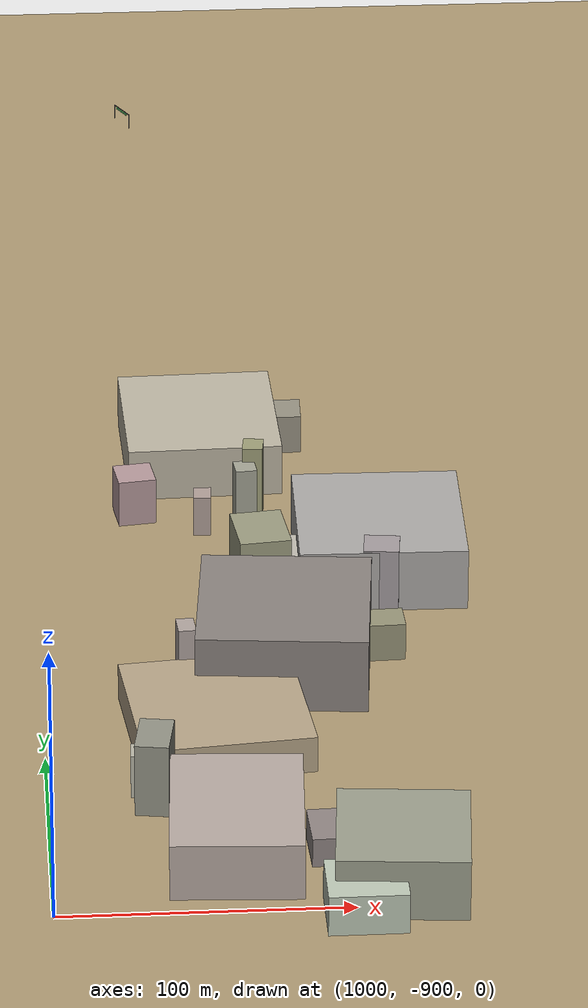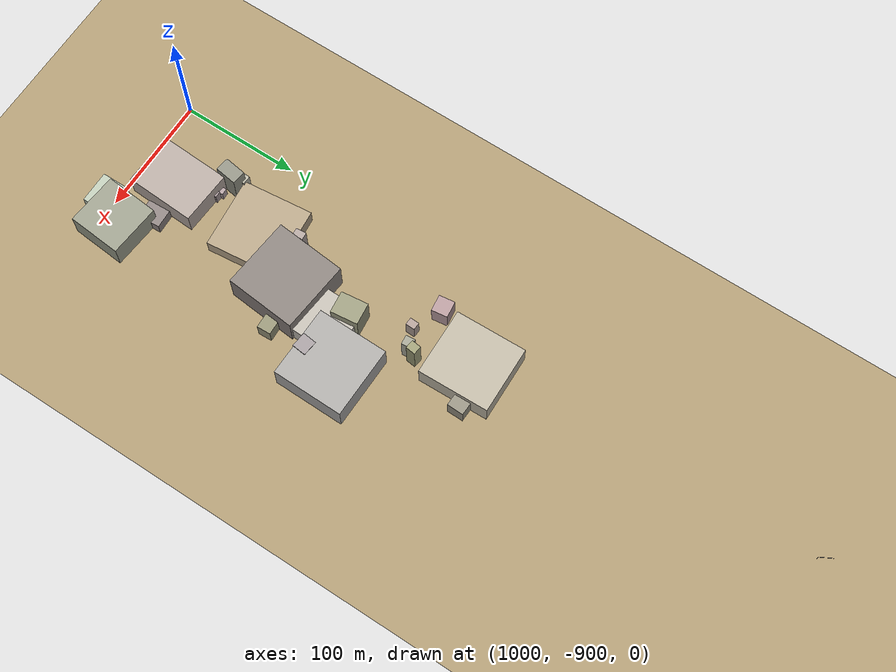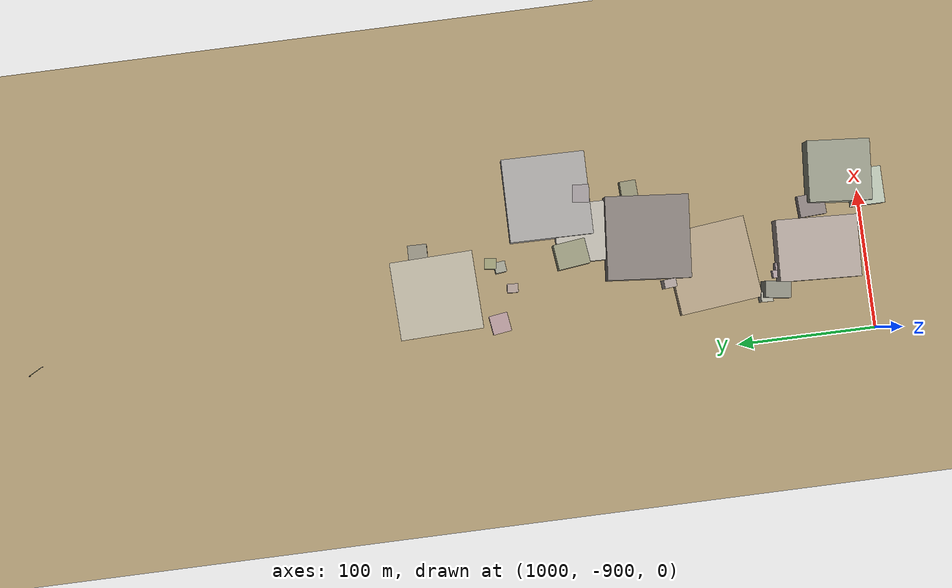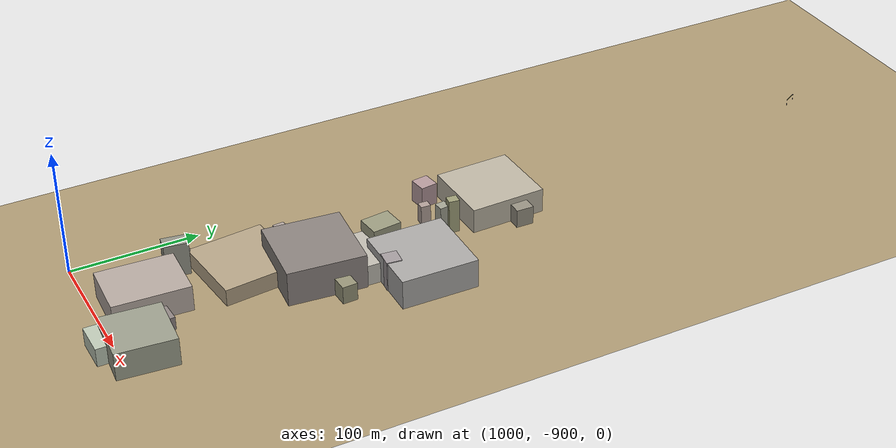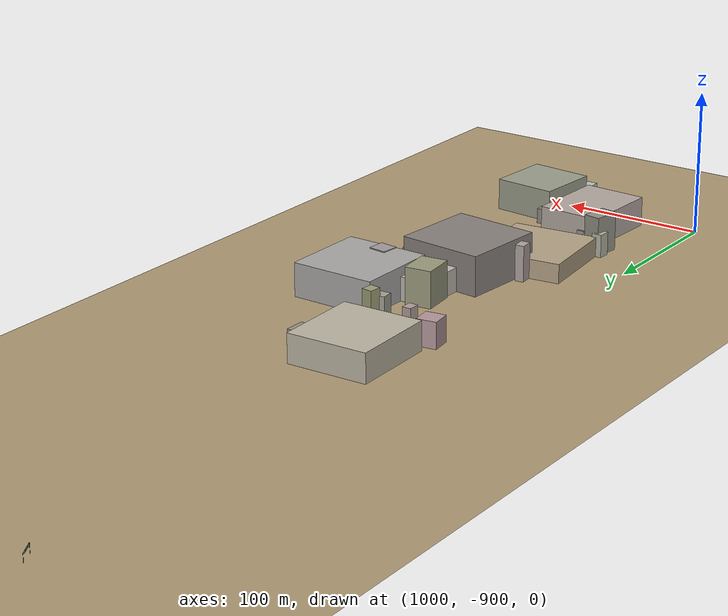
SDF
<sdf version="1.9">
 <world name="crossroad_world">
  <model name="ground_plane">
   <static>true</static>
   <pose>0 0 -0.05 0 0 0</pose>
   <link name="link">
    <collision name="collision">
     <geometry><plane><normal>0 0 1</normal><size>10000 10000</size></plane></geometry>
    </collision>
    <visual name="visual">
     <geometry><plane><normal>0 0 1</normal><size>15000 15000</size></plane></geometry>
     <material><ambient>0.68 0.60 0.45 1</ambient><diffuse>0.68 0.60 0.45 1</diffuse></material>
    </visual>
   </link>
  </model>
  <model name="gantry_138">
   <static>true</static>
   <pose>1045.897 -291.827 0 0 0 -1.072</pose>
   <link name="link">
    <visual name="post_l">
     <pose>-5.700 0 2.925 0 0 0</pose>
     <geometry><cylinder><radius>0.1</radius><length>5.85</length></cylinder></geometry>
     <material><ambient>0.30 0.30 0.35 1</ambient><diffuse>0.30 0.30 0.35 1</diffuse></material>
    </visual>
    <visual name="post_r">
     <pose>5.700 0 2.925 0 0 0</pose>
     <geometry><cylinder><radius>0.1</radius><length>5.85</length></cylinder></geometry>
     <material><ambient>0.30 0.30 0.35 1</ambient><diffuse>0.30 0.30 0.35 1</diffuse></material>
    </visual>
    <visual name="beam">
     <pose>0 0 6.000 0 0 0</pose>
     <geometry><box><size>11.400 0.22 0.22</size></box></geometry>
     <material><ambient>0.30 0.30 0.35 1</ambient><diffuse>0.30 0.30 0.35 1</diffuse></material>
    </visual>
    <visual name="sign_border">
     <pose>0 -0.14 5.450 0 0 0</pose>
     <geometry><box><size>8.288 0.04 0.92</size></box></geometry>
     <material><ambient>0.90 0.85 0.10 1</ambient><diffuse>0.90 0.85 0.10 1</diffuse></material>
    </visual>
    <visual name="sign_panel">
     <pose>0 -0.15 5.450 0 0 0</pose>
     <geometry><box><size>8.208 0.05 0.86</size></box></geometry>
     <material><ambient>0.05 0.38 0.10 1</ambient><diffuse>0.05 0.38 0.10 1</diffuse></material>
    </visual>
    <collision name="col_post_l">
     <pose>-5.700 0 2.925 0 0 0</pose>
     <geometry><cylinder><radius>0.1</radius><length>5.85</length></cylinder></geometry>
    </collision>
    <collision name="col_post_r">
     <pose>5.700 0 2.925 0 0 0</pose>
     <geometry><cylinder><radius>0.1</radius><length>5.85</length></cylinder></geometry>
    </collision>
    <collision name="col_beam">
     <pose>0 0 6.000 0 0 0</pose>
     <geometry><box><size>11.400 0.22 0.22</size></box></geometry>
    </collision>
   </link>
  </model>
  <model name="building_255">
   <static>true</static>
   <pose>1122.671 -698.894 12.004 0 0 -0.109</pose>
   <link name="link">
    <visual name="body">
     <geometry><box><size>12.70 11.87 24.01</size></box></geometry>
     <material><ambient>0.64 0.61 0.62 1</ambient><diffuse>0.64 0.61 0.62 1</diffuse></material>
    </visual>
    <collision name="col"><geometry><box><size>12.70 11.87 24.01</size></box></geometry></collision>
   </link>
  </model>
  <model name="building_257">
   <static>true</static>
   <pose>1059.363 -787.165 6.756 0 0 0.105</pose>
   <link name="link">
    <visual name="body">
     <geometry><box><size>60.00 59.66 13.51</size></box></geometry>
     <material><ambient>0.71 0.64 0.53 1</ambient><diffuse>0.71 0.64 0.53 1</diffuse></material>
    </visual>
    <collision name="col"><geometry><box><size>60.00 59.66 13.51</size></box></geometry></collision>
   </link>
  </model>
  <model name="building_275">
   <static>true</static>
   <pose>1031.858 -822.840 8.075 0 0 -0.038</pose>
   <link name="link">
    <visual name="body">
     <geometry><box><size>7.08 8.50 16.15</size></box></geometry>
     <material><ambient>0.72 0.71 0.65 1</ambient><diffuse>0.72 0.71 0.65 1</diffuse></material>
    </visual>
    <collision name="col"><geometry><box><size>7.08 8.50 16.15</size></box></geometry></collision>
   </link>
  </model>
  <model name="building_276">
   <static>true</static>
   <pose>1093.732 -864.529 5.323 0 0 0.045</pose>
   <link name="link">
    <visual name="body">
     <geometry><box><size>15.50 19.08 10.65</size></box></geometry>
     <material><ambient>0.56 0.52 0.51 1</ambient><diffuse>0.56 0.52 0.51 1</diffuse></material>
    </visual>
    <collision name="col"><geometry><box><size>15.50 19.08 10.65</size></box></geometry></collision>
   </link>
  </model>
  <model name="building_287">
   <static>true</static>
   <pose>1037.386 -629.822 8.929 0 0 0.136</pose>
   <link name="link">
    <visual name="body">
     <geometry><box><size>13.79 13.46 17.86</size></box></geometry>
     <material><ambient>0.71 0.60 0.61 1</ambient><diffuse>0.71 0.60 0.61 1</diffuse></material>
    </visual>
    <collision name="col"><geometry><box><size>13.79 13.46 17.86</size></box></geometry></collision>
   </link>
  </model>
  <model name="building_302">
   <static>true</static>
   <pose>1121.044 -734.271 7.065 0 0 0.041</pose>
   <link name="link">
    <visual name="body">
     <geometry><box><size>13.70 11.66 14.13</size></box></geometry>
     <material><ambient>0.59 0.58 0.47 1</ambient><diffuse>0.59 0.58 0.47 1</diffuse></material>
    </visual>
    <collision name="col"><geometry><box><size>13.70 11.66 14.13</size></box></geometry></collision>
   </link>
  </model>
  <model name="building_304">
   <static>true</static>
   <pose>1080.255 -686.864 12.704 0 0 0.116</pose>
   <link name="link">
    <visual name="body">
     <geometry><box><size>18.46 23.03 25.41</size></box></geometry>
     <material><ambient>0.61 0.61 0.50 1</ambient><diffuse>0.61 0.61 0.50 1</diffuse></material>
    </visual>
    <collision name="col"><geometry><box><size>18.46 23.03 25.41</size></box></geometry></collision>
   </link>
  </model>
  <model name="building_305">
   <static>true</static>
   <pose>1050.378 -754.218 12.454 0 0 0.077</pose>
   <link name="link">
    <visual name="body">
     <geometry><box><size>6.23 8.77 24.91</size></box></geometry>
     <material><ambient>0.69 0.64 0.62 1</ambient><diffuse>0.69 0.64 0.62 1</diffuse></material>
    </visual>
    <collision name="col"><geometry><box><size>6.23 8.77 24.91</size></box></geometry></collision>
   </link>
  </model>
  <model name="building_306">
   <static>true</static>
   <pose>1052.724 -834.557 5.217 0 0 -0.029</pose>
   <link name="link">
    <visual name="body">
     <geometry><box><size>5.22 4.40 10.43</size></box></geometry>
     <material><ambient>0.64 0.58 0.59 1</ambient><diffuse>0.64 0.58 0.59 1</diffuse></material>
    </visual>
    <collision name="col"><geometry><box><size>5.22 4.40 10.43</size></box></geometry></collision>
   </link>
  </model>
  <model name="building_307">
   <static>true</static>
   <pose>1047.478 -832.815 4.302 0 0 0.040</pose>
   <link name="link">
    <visual name="body">
     <geometry><box><size>5.55 5.20 8.60</size></box></geometry>
     <material><ambient>0.70 0.63 0.64 1</ambient><diffuse>0.70 0.63 0.64 1</diffuse></material>
    </visual>
    <collision name="col"><geometry><box><size>5.55 5.20 8.60</size></box></geometry></collision>
   </link>
  </model>
  <model name="building_308">
   <static>true</static>
   <pose>1036.142 -830.031 13.493 0 0 -0.148</pose>
   <link name="link">
    <visual name="body">
     <geometry><box><size>11.70 18.51 26.99</size></box></geometry>
     <material><ambient>0.57 0.57 0.52 1</ambient><diffuse>0.57 0.57 0.52 1</diffuse></material>
    </visual>
    <collision name="col"><geometry><box><size>11.70 18.51 26.99</size></box></geometry></collision>
   </link>
  </model>
  <model name="building_325">
   <static>true</static>
   <pose>1063.209 -586.887 9.924 0 0 0.029</pose>
   <link name="link">
    <visual name="body">
     <geometry><box><size>56.51 60.00 19.85</size></box></geometry>
     <material><ambient>0.74 0.71 0.64 1</ambient><diffuse>0.74 0.71 0.64 1</diffuse></material>
    </visual>
    <collision name="col"><geometry><box><size>56.51 60.00 19.85</size></box></geometry></collision>
   </link>
  </model>
  <model name="building_326">
   <static>true</static>
   <pose>1080.897 -628.025 13.742 0 0 -0.118</pose>
   <link name="link">
    <visual name="body">
     <geometry><box><size>7.44 8.22 27.48</size></box></geometry>
     <material><ambient>0.62 0.62 0.47 1</ambient><diffuse>0.62 0.62 0.47 1</diffuse></material>
    </visual>
    <collision name="col"><geometry><box><size>7.44 8.22 27.48</size></box></geometry></collision>
   </link>
  </model>
  <model name="building_327">
   <static>true</static>
   <pose>1077.592 -634.876 11.057 0 0 0.103</pose>
   <link name="link">
    <visual name="body">
     <geometry><box><size>7.81 8.05 22.11</size></box></geometry>
     <material><ambient>0.64 0.64 0.58 1</ambient><diffuse>0.64 0.64 0.58 1</diffuse></material>
    </visual>
    <collision name="col"><geometry><box><size>7.81 8.05 22.11</size></box></geometry></collision>
   </link>
  </model>
  <model name="building_328">
   <static>true</static>
   <pose>1061.529 -642.021 7.749 0 0 -0.047</pose>
   <link name="link">
    <visual name="body">
     <geometry><box><size>6.35 7.80 15.50</size></box></geometry>
     <material><ambient>0.69 0.62 0.59 1</ambient><diffuse>0.69 0.62 0.59 1</diffuse></material>
    </visual>
    <collision name="col"><geometry><box><size>6.35 7.80 15.50</size></box></geometry></collision>
   </link>
  </model>
  <model name="building_332">
   <static>true</static>
   <pose>1096.126 -577.196 7.460 0 0 -0.023</pose>
   <link name="link">
    <visual name="body">
     <geometry><box><size>10.57 13.89 14.92</size></box></geometry>
     <material><ambient>0.59 0.57 0.51 1</ambient><diffuse>0.59 0.57 0.51 1</diffuse></material>
    </visual>
    <collision name="col"><geometry><box><size>10.57 13.89 14.92</size></box></geometry></collision>
   </link>
  </model>
  <model name="building_421">
   <static>true</static>
   <pose>1102.103 -904.891 7.350 0 0 0.005</pose>
   <link name="link">
    <visual name="body">
     <geometry><box><size>26.66 23.30 14.70</size></box></geometry>
     <material><ambient>0.74 0.78 0.71 1</ambient><diffuse>0.74 0.78 0.71 1</diffuse></material>
    </visual>
    <collision name="col"><geometry><box><size>26.66 23.30 14.70</size></box></geometry></collision>
   </link>
  </model>
  <model name="building_423">
   <static>true</static>
   <pose>1061.987 -863.667 10.310 0 0 -0.048</pose>
   <link name="link">
    <visual name="body">
     <geometry><box><size>44.73 58.70 20.62</size></box></geometry>
     <material><ambient>0.71 0.66 0.63 1</ambient><diffuse>0.71 0.66 0.63 1</diffuse></material>
    </visual>
    <collision name="col"><geometry><box><size>44.73 58.70 20.62</size></box></geometry></collision>
   </link>
  </model>
  <model name="building_424">
   <static>true</static>
   <pose>1115.557 -885.701 11.153 0 0 -0.081</pose>
   <link name="link">
    <visual name="body">
     <geometry><box><size>44.32 45.20 22.31</size></box></geometry>
     <material><ambient>0.61 0.62 0.55 1</ambient><diffuse>0.61 0.62 0.55 1</diffuse></material>
    </visual>
    <collision name="col"><geometry><box><size>44.32 45.20 22.31</size></box></geometry></collision>
   </link>
  </model>
  <model name="building_428">
   <static>true</static>
   <pose>1085.224 -742.537 13.853 0 0 -0.090</pose>
   <link name="link">
    <visual name="body">
     <geometry><box><size>60.00 60.00 27.71</size></box></geometry>
     <material><ambient>0.54 0.51 0.49 1</ambient><diffuse>0.54 0.51 0.49 1</diffuse></material>
    </visual>
    <collision name="col"><geometry><box><size>60.00 60.00 27.71</size></box></geometry></collision>
   </link>
  </model>
  <model name="building_429">
   <static>true</static>
   <pose>1095.118 -698.939 8.294 0 0 -0.029</pose>
   <link name="link">
    <visual name="body">
     <geometry><box><size>42.66 42.96 16.59</size></box></geometry>
     <material><ambient>0.75 0.73 0.69 1</ambient><diffuse>0.75 0.73 0.69 1</diffuse></material>
    </visual>
    <collision name="col"><geometry><box><size>42.66 42.96 16.59</size></box></geometry></collision>
   </link>
  </model>
  <model name="building_431">
   <static>true</static>
   <pose>1123.524 -674.754 11.674 0 0 -0.012</pose>
   <link name="link">
    <visual name="body">
     <geometry><box><size>60.00 60.00 23.35</size></box></geometry>
     <material><ambient>0.67 0.66 0.65 1</ambient><diffuse>0.67 0.66 0.65 1</diffuse></material>
    </visual>
    <collision name="col"><geometry><box><size>60.00 60.00 23.35</size></box></geometry></collision>
   </link>
  </model>
 </world>
</sdf>
